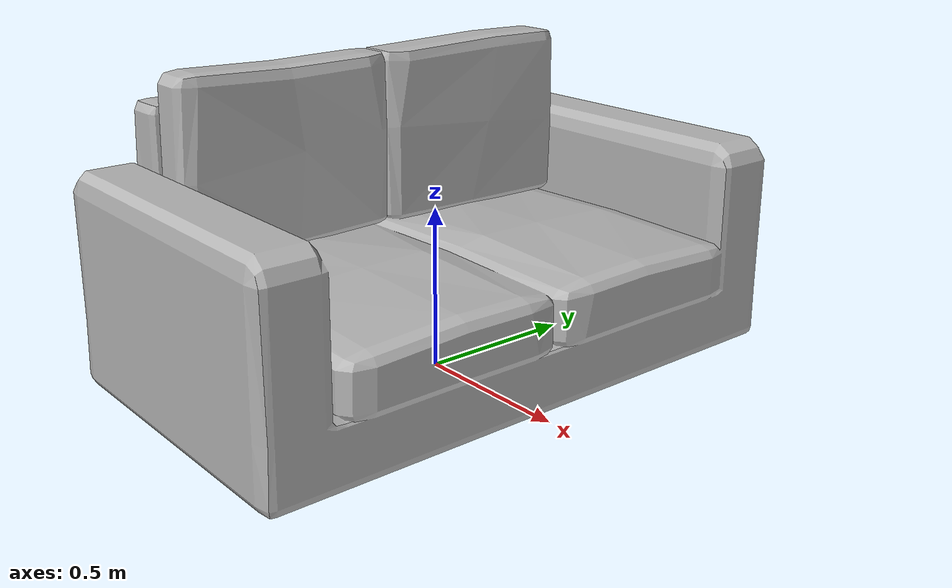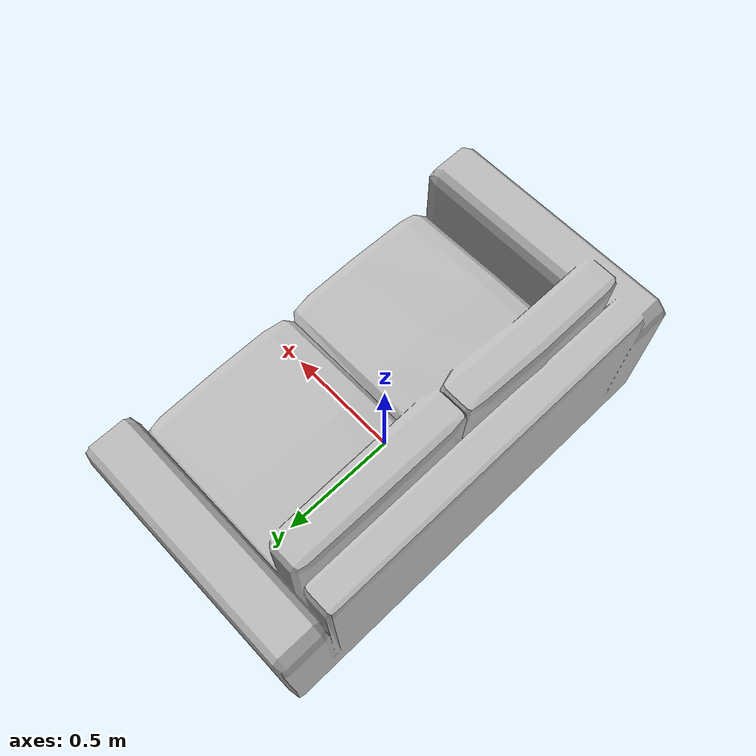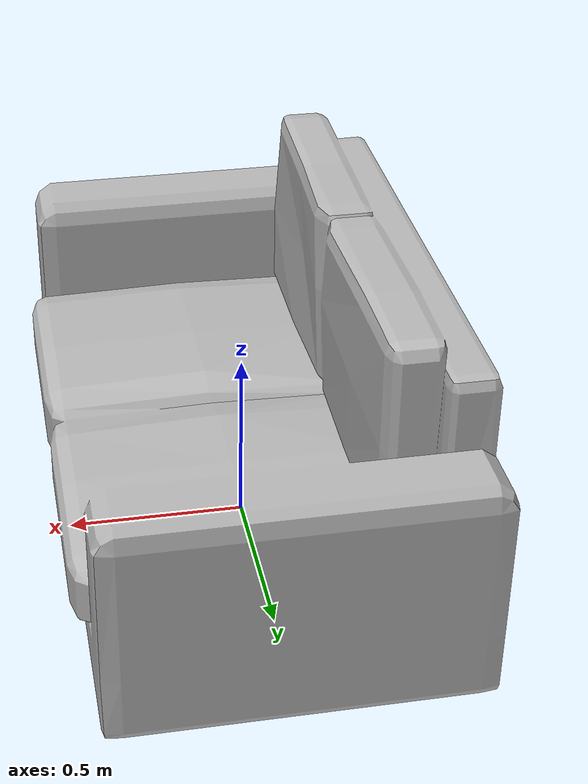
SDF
<?xml version="1.0" ?>
<sdf version="1.5">
  <model name="Sofa">
    <link name="link">
      <pose>0 0 0 0 0 1.57079632679</pose>

        <visual name="visual">
          <geometry>
            <mesh><uri>model://Sofa/meshes/Sofa.obj</uri></mesh>
          </geometry>
        </visual>

        <collision name="collision">
          <geometry>
            <mesh><uri>model://Sofa/meshes/Sofa.obj</uri></mesh>
          </geometry>
        </collision>

    </link>
  </model>
</sdf>
